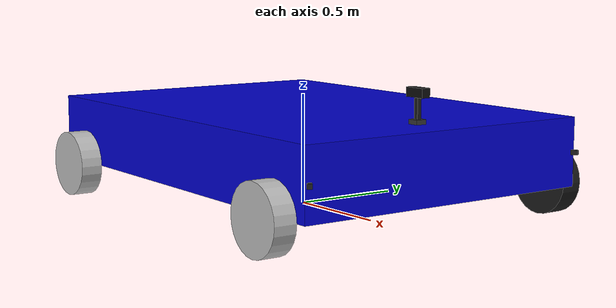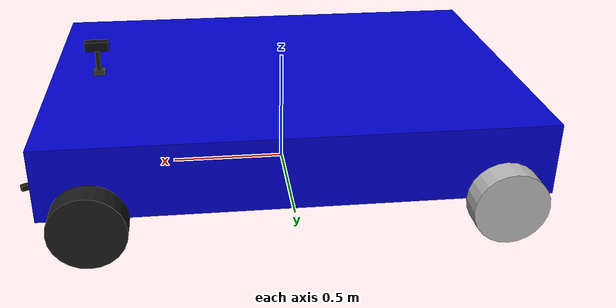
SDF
<?xml version='1.0'?>
<sdf version='1.7'>
  <model name='car_with_axles'>
    <static>false</static>

    <link name='chassis_link'>
      <pose>0 0 0.3 0 0 0</pose>
      <inertial>
        <mass>100.0</mass>
        <inertia>
          <ixx>16.3</ixx>
          <iyy>34.0</iyy>
          <izz>48.0</izz>
        </inertia>
      </inertial>
      <visual name='visual'>
        <geometry><box><size>2.0 1.4 0.3</size></box></geometry>
        <material><ambient>0.0 0.0 0.8 1</ambient></material>
      </visual>
      <collision name='collision'>
        <geometry><box><size>2.0 1.4 0.3</size></box></geometry>
        <surface>
          <friction><ode><mu>0.8</mu><mu2>0.8</mu2></ode></friction>
        </surface>
      </collision>

      <!-- ============ ULTRASONIC: LEFT (30° left, mid-height on side) ============ -->
      <visual name="ultra_left_vis">
        <pose>1.015 0.69 0 0 0 0.523599</pose>  <!-- +30° yaw, mid-height -->
        <geometry>
          <box><size>0.03 0.02 0.02</size></box>
        </geometry>
        <material>
          <ambient>0.1 0.1 0.1 1</ambient>
        </material>
      </visual>

      <sensor name="ultra_left" type="ray">
        <always_on>true</always_on>
        <update_rate>20</update_rate>
        <visualize>true</visualize>
        <pose>1.015 0.69 0 0 0 0.523599</pose> <!-- +30° yaw, mid-height -->
        <ray>
          <scan>
            <horizontal>
              <samples>16</samples>
              <resolution>1</resolution>
              <min_angle>-0.261799</min_angle>
              <max_angle>0.261799</max_angle>
            </horizontal>
          </scan>
          <range>
            <min>0.10</min>
            <max>4.0</max>
            <resolution>0.01</resolution>
          </range>
          <noise>
            <type>gaussian</type>
            <mean>0.0</mean>
            <stddev>0.01</stddev>
          </noise>
        </ray>
        <plugin name="ultra_left_scan" filename="libgazebo_ros_ray_sensor.so">
          <ros>
            <namespace>/ultrasonic/left</namespace>
            <remapping>~/out:=scan</remapping>
          </ros>
          <frame_name>ultra_left_frame</frame_name>
        </plugin>
      </sensor>

      <!-- ============ ULTRASONIC: RIGHT (30° right, mid-height on side) ============ -->
      <visual name="ultra_right_vis">
        <pose>1.015 -0.69 0 0 0 -0.523599</pose> <!-- -30° yaw, mid-height -->
        <geometry>
          <box><size>0.03 0.02 0.02</size></box>
        </geometry>
        <material>
          <ambient>0.1 0.1 0.1 1</ambient>
        </material>
      </visual>

      <sensor name="ultra_right" type="ray">
        <always_on>true</always_on>
        <update_rate>20</update_rate>
        <visualize>true</visualize>
        <pose>1.015 -0.69 0 0 0 -0.523599</pose> <!-- -30° yaw, mid-height -->
        <ray>
          <scan>
            <horizontal>
              <samples>16</samples>
              <resolution>1</resolution>
              <min_angle>-0.261799</min_angle>
              <max_angle>0.261799</max_angle>
            </horizontal>
          </scan>
          <range>
            <min>0.10</min>
            <max>4.0</max>
            <resolution>0.01</resolution>
          </range>
          <noise>
            <type>gaussian</type>
            <mean>0.0</mean>
            <stddev>0.01</stddev>
          </noise>
        </ray>
        <plugin name="ultra_right_scan" filename="libgazebo_ros_ray_sensor.so">
          <ros>
            <namespace>/ultrasonic/right</namespace>
            <remapping>~/out:=scan</remapping>
          </ros>
          <frame_name>ultra_right_frame</frame_name>
        </plugin>
      </sensor>
    </link>

    <link name='front_left_wheel'>
      <pose>0.8 0.75 0.15 0 0 0</pose>
      <inertial><mass>5</mass></inertial>
      <visual name='visual'>
        <pose>0 0 0 1.5707 0 0</pose>
        <geometry><cylinder><radius>0.15</radius><length>0.1</length></cylinder></geometry>
        <material><ambient>0.1 0.1 0.1 1</ambient></material>
      </visual>
      <collision name='collision'>
        <pose>0 0 0 1.5707 0 0</pose>
        <geometry><cylinder><radius>0.15</radius><length>0.1</length></cylinder></geometry>
        <surface>
          <friction><ode><mu>0.05</mu><mu2>0.05</mu2></ode></friction>
          <contact><ode><kp>1e6</kp><kd>2.0</kd></ode></contact>
        </surface>
      </collision>
    </link>

    <link name='front_right_wheel'>
      <pose>0.8 -0.75 0.15 0 0 0</pose>
      <inertial><mass>5</mass></inertial>
      <visual name='visual'>
        <pose>0 0 0 1.5707 0 0</pose>
        <geometry><cylinder><radius>0.15</radius><length>0.1</length></cylinder></geometry>
      </visual>
      <collision name='collision'>
        <pose>0 0 0 1.5707 0 0</pose>
        <geometry><cylinder><radius>0.15</radius><length>0.1</length></cylinder></geometry>
        <surface>
          <friction><ode><mu>0.05</mu><mu2>0.05</mu2></ode></friction>
          <contact><ode><kp>1e6</kp><kd>2.0</kd></ode></contact>
        </surface>
      </collision>
    </link>

    <link name='rear_left_wheel'>
      <pose>-0.8 0.75 0.15 0 0 0</pose>
      <inertial><mass>5</mass></inertial>
      <visual name='visual'>
        <pose>0 0 0 1.5707 0 0</pose>
        <geometry><cylinder><radius>0.15</radius><length>0.1</length></cylinder></geometry>
      </visual>
      <collision name='collision'>
        <pose>0 0 0 1.5707 0 0</pose>
        <geometry><cylinder><radius>0.15</radius><length>0.1</length></cylinder></geometry>
        <surface>
          <friction>
            <ode>
              <mu>1.6</mu><mu2>1.6</mu2>
              <slip1>0.0</slip1><slip2>0.0</slip2>
            </ode>
          </friction>
          <contact><ode><kp>1e6</kp><kd>2.0</kd></ode></contact>
        </surface>
      </collision>
    </link>

    <link name='rear_right_wheel'>
      <pose>-0.8 -0.75 0.15 0 0 0</pose>
      <inertial><mass>5</mass></inertial>
      <visual name='visual'>
        <pose>0 0 0 1.5707 0 0</pose>
        <geometry><cylinder><radius>0.15</radius><length>0.1</length></cylinder></geometry>
      </visual>
      <collision name='collision'>
        <pose>0 0 0 1.5707 0 0</pose>
        <geometry><cylinder><radius>0.15</radius><length>0.1</length></cylinder></geometry>
        <surface>
          <friction>
            <ode>
              <mu>1.6</mu><mu2>1.6</mu2>
              <slip1>0.0</slip1><slip2>0.0</slip2>
            </ode>
          </friction>
          <contact><ode><kp>1e6</kp><kd>2.0</kd></ode></contact>
        </surface>
      </collision>
    </link>

    <joint name='front_left_wheel_joint' type='fixed'>
      <parent>chassis_link</parent>
      <child>front_left_wheel</child>
    </joint>

    <joint name='front_right_wheel_joint' type='fixed'>
      <parent>chassis_link</parent>
      <child>front_right_wheel</child>
    </joint>

    <joint name='rear_left_wheel_joint' type='revolute'>
      <parent>chassis_link</parent>
      <child>rear_left_wheel</child>
      <axis>
        <xyz>0 1 0</xyz>
        <use_parent_model_frame>true</use_parent_model_frame>
        <limit><lower>-1e16</lower><upper>1e16</upper></limit>
        <dynamics><damping>1.5</damping><friction>0.2</friction></dynamics>
      </axis>
    </joint>

    <joint name='rear_right_wheel_joint' type='revolute'>
      <parent>chassis_link</parent>
      <child>rear_right_wheel</child>
      <axis>
        <xyz>0 1 0</xyz>
        <use_parent_model_frame>true</use_parent_model_frame>
        <limit><lower>-1e16</lower><upper>1e16</upper></limit>
        <dynamics><damping>1.5</damping><friction>0.2</friction></dynamics>
      </axis>
    </joint>

    <plugin name="car_diff_drive" filename="libgazebo_ros_diff_drive.so">
      <ros><namespace>/car_chassis</namespace></ros>
      <left_joint>rear_left_wheel_joint</left_joint>
      <right_joint>rear_right_wheel_joint</right_joint>
      <wheel_separation>1.5</wheel_separation>
      <wheel_radius>0.15</wheel_radius>
      <max_wheel_torque>120.0</max_wheel_torque>
      <max_speed>3.0</max_speed>
      <max_backward_speed>3.0</max_backward_speed>
      <command_timeout>0.20</command_timeout>
    </plugin>

    <!-- ====================== OAK-D PRO CAMERA SYSTEM ====================== -->

    <!-- Camera Mount Link (Mast) -->
    <link name="camera_mount_link">
      <!-- Mount base position on chassis -->
      <pose>0.8 0.0 0.45 0 0 0</pose>

      <inertial>
        <mass>0.30</mass>
        <inertia>
          <ixx>0.0004</ixx><iyy>0.0004</iyy><izz>0.0004</izz>
        </inertia>
      </inertial>

      <!-- Visuals -->
      <visual name="camera_base_vis">
        <pose>0 0 0.01 0 0 0</pose>
        <geometry><box><size>0.05 0.05 0.02</size></box></geometry>
        <material><ambient>0.2 0.2 0.2 1</ambient></material>
      </visual>

      <visual name="camera_mast_vis">
        <pose>0 0 0.065 0 0 0</pose>
        <geometry><box><size>0.02 0.02 0.11</size></box></geometry>
        <material><ambient>0.1 0.1 0.1 1</ambient></material>
      </visual>

      <!-- Collisions -->
      <collision name="camera_base_col">
        <pose>0 0 0.01 0 0 0</pose>
        <geometry><box><size>0.05 0.05 0.02</size></box></geometry>
      </collision>

      <collision name="camera_mast_col">
        <pose>0 0 0.065 0 0 0</pose>
        <geometry><box><size>0.02 0.02 0.11</size></box></geometry>
      </collision>

      <self_collide>false</self_collide>
    </link>

    <!-- Mount fixed to chassis -->
    <joint name="camera_mount_joint" type="fixed">
      <parent>chassis_link</parent>
      <child>camera_mount_link</child>
      <physics><ode><erp>0.2</erp><cfm>0.0</cfm></ode></physics>
    </joint>

    <!-- ==================== MAIN CAMERA LINK (OAK-D Pro) ==================== -->
    <link name="camera_link">
      <pose relative_to="camera_mount_link">0 0 0.13 0 0 0</pose>

      <inertial>
        <mass>0.25</mass>
        <inertia>
          <ixx>0.0003</ixx><iyy>0.0003</iyy><izz>0.0003</izz>
        </inertia>
      </inertial>

      <gravity>false</gravity>

      <!-- Camera body -->
      <visual name="camera_body_vis">
        <geometry><box><size>0.10 0.04 0.04</size></box></geometry>
        <material><ambient>0.05 0.05 0.05 1</ambient></material>
      </visual>

      <collision name="camera_body_col">
        <geometry><box><size>0.10 0.04 0.04</size></box></geometry>
      </collision>

      <!-- ==================== RGB COLOR CAMERA ==================== -->
      <sensor name="oak_color" type="camera">
        <always_on>true</always_on>
        <update_rate>60</update_rate>
        <visualize>true</visualize>
        <camera>
          <horizontal_fov>1.204</horizontal_fov>
          <image>
            <width>1920</width>
            <height>1080</height>
            <format>R8G8B8</format>
          </image>
          <clip>
            <near>0.08</near>
            <far>100.0</far>
          </clip>
          <noise>
            <type>gaussian</type>
            <mean>0.0</mean>
            <stddev>0.005</stddev>
          </noise>
          <distortion>
            <k1>-0.02</k1>
            <k2>0.005</k2>
            <k3>0.0</k3>
            <p1>0.0</p1>
            <p2>0.0</p2>
            <center>0.5 0.5</center>
          </distortion>
          <lens>
            <type>custom</type>
            <scale_to_hfov>true</scale_to_hfov>
            <custom_function>
              <c1>1.05</c1>
              <c2>4</c2>
              <f>1.0</f>
              <fun>tan</fun>
            </custom_function>
          </lens>
        </camera>
        <plugin name="oak_color_ros" filename="libgazebo_ros_camera.so">
          <ros><namespace>oak/color</namespace></ros>
          <frame_name>oak_rgb_camera_optical_frame</frame_name>
          <hack_baseline>0.075</hack_baseline>
          <min_depth>0.08</min_depth>
          <max_depth>100.0</max_depth>
        </plugin>
      </sensor>

      <!-- ==================== STEREO DEPTH CAMERA (OV9282 Pair) ==================== -->
      <sensor name="oak_depth" type="depth">
        <always_on>true</always_on>
        <update_rate>60</update_rate>
        <visualize>true</visualize>
        <camera>
          <horizontal_fov>1.253</horizontal_fov>
          <image>
            <width>1280</width>
            <height>800</height>
            <format>R_FLOAT32</format>
          </image>
          <clip>
            <near>0.20</near>
            <far>35.0</far>
          </clip>
          <noise>
            <type>gaussian</type>
            <mean>0.0</mean>
            <stddev>0.015</stddev>
          </noise>
        </camera>
        <plugin name="oak_depth_ros" filename="libgazebo_ros_camera.so">
          <ros><namespace>oak/depth</namespace></ros>
          <frame_name>oak_depth_optical_frame</frame_name>
          <hack_baseline>0.075</hack_baseline>
          <min_depth>0.20</min_depth>
          <max_depth>35.0</max_depth>
          <point_cloud_cutoff>0.20</point_cloud_cutoff>
        </plugin>
      </sensor>

      <!-- ==================== LEFT STEREO CAMERA ==================== -->
      <sensor name="oak_left" type="camera">
        <always_on>true</always_on>
        <update_rate>60</update_rate>
        <visualize>false</visualize>
        <pose>-0.0375 0 0 0 0 0</pose>
        <camera>
          <horizontal_fov>1.253</horizontal_fov>
          <image>
            <width>1280</width>
            <height>800</height>
            <format>L8</format>
          </image>
          <clip>
            <near>0.20</near>
            <far>35.0</far>
          </clip>
        </camera>
        <plugin name="oak_left_ros" filename="libgazebo_ros_camera.so">
          <ros><namespace>oak/left</namespace></ros>
          <frame_name>oak_left_camera_optical_frame</frame_name>
        </plugin>
      </sensor>

      <!-- ==================== RIGHT STEREO CAMERA ==================== -->
      <sensor name="oak_right" type="camera">
        <always_on>true</always_on>
        <update_rate>60</update_rate>
        <visualize>false</visualize>
        <pose>0.0375 0 0 0 0 0</pose>
        <camera>
          <horizontal_fov>1.253</horizontal_fov>
          <image>
            <width>1280</width>
            <height>800</height>
            <format>L8</format>
          </image>
          <clip>
            <near>0.20</near>
            <far>35.0</far>
          </clip>
        </camera>
        <plugin name="oak_right_ros" filename="libgazebo_ros_camera.so">
          <ros><namespace>oak/right</namespace></ros>
          <frame_name>oak_right_camera_optical_frame</frame_name>
        </plugin>
      </sensor>

      <!-- ==================== IMU SENSOR (BNO085) ==================== -->
      <sensor name="oak_imu" type="imu">
        <always_on>true</always_on>
        <update_rate>100</update_rate>
        <visualize>false</visualize>
        <imu>
          <angular_velocity>
            <x><noise type="gaussian"><mean>0.0</mean><stddev>0.0002</stddev></noise></x>
            <y><noise type="gaussian"><mean>0.0</mean><stddev>0.0002</stddev></noise></y>
            <z><noise type="gaussian"><mean>0.0</mean><stddev>0.0002</stddev></noise></z>
          </angular_velocity>
          <linear_acceleration>
            <x><noise type="gaussian"><mean>0.0</mean><stddev>0.017</stddev></noise></x>
            <y><noise type="gaussian"><mean>0.0</mean><stddev>0.017</stddev></noise></y>
            <z><noise type="gaussian"><mean>0.0</mean><stddev>0.017</stddev></noise></z>
          </linear_acceleration>
        </imu>
        <plugin name="oak_imu_plugin" filename="libgazebo_ros_imu_sensor.so">
          <ros><namespace>oak</namespace></ros>
          <frame_name>oak_imu_frame</frame_name>
          <initial_orientation_as_reference>false</initial_orientation_as_reference>
        </plugin>
      </sensor>
    </link>

    <!-- Camera fixed to mast -->
    <joint name="camera_fixed_to_mount" type="fixed">
      <parent>camera_mount_link</parent>
      <child>camera_link</child>
      <physics><ode><erp>0.2</erp><cfm>0.0</cfm></ode></physics>
    </joint>
  </model>
</sdf>
